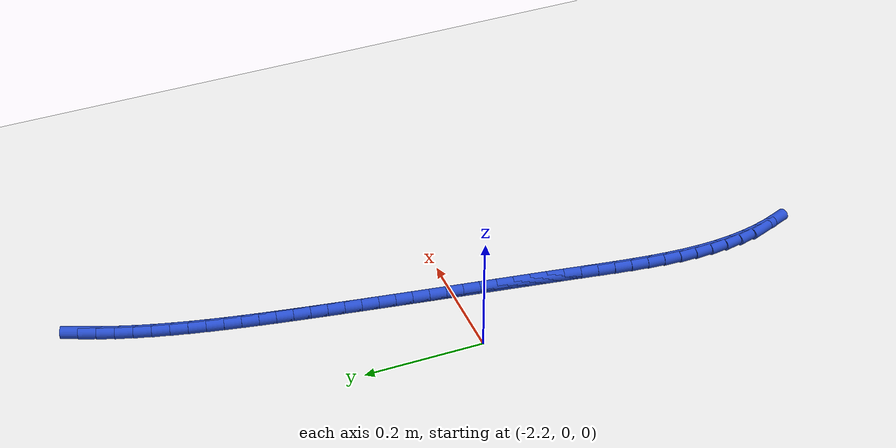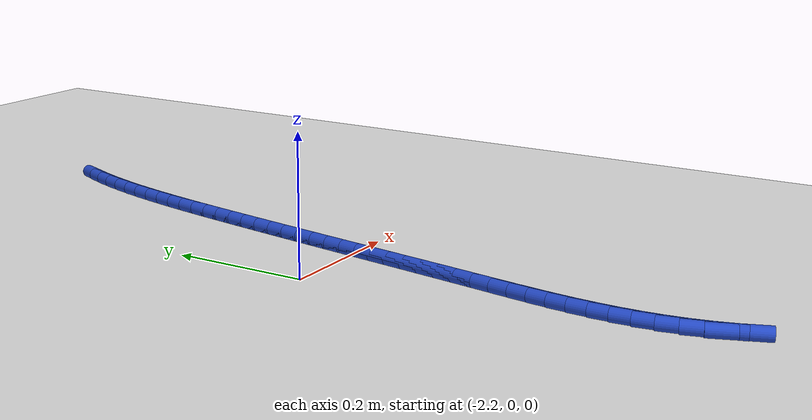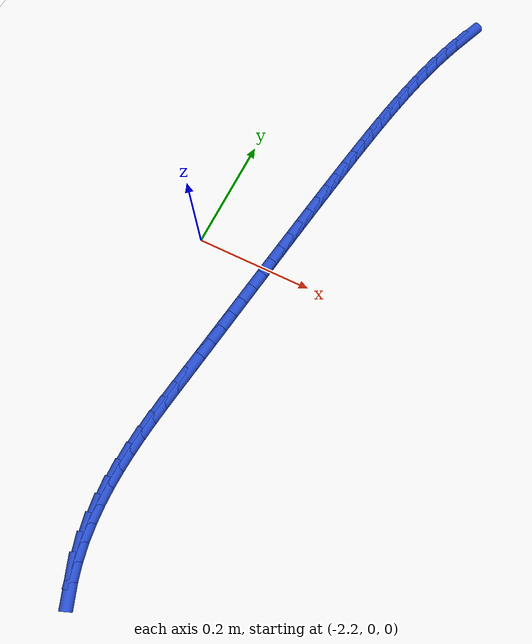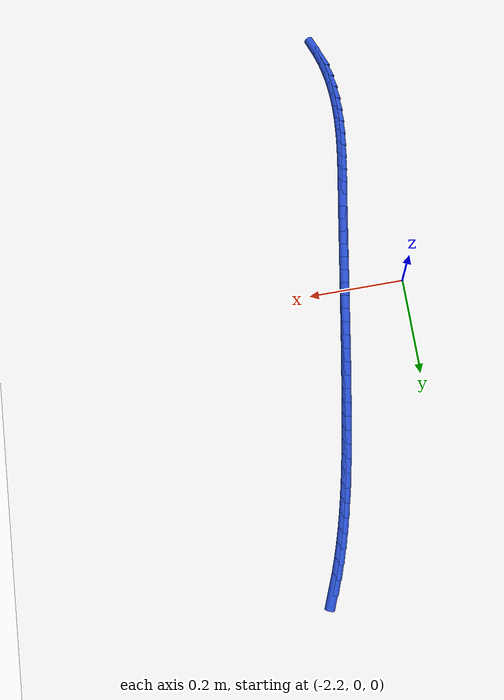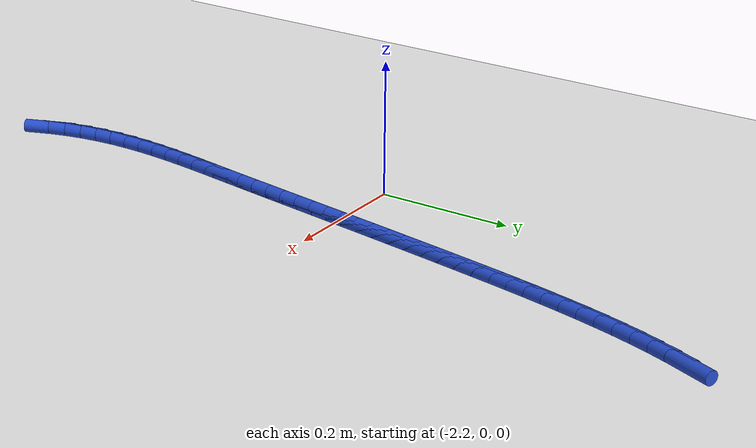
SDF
<sdf version="1.6">
 <world name="default">
  <model name="ground_plane">
   <static>1</static>
   <link name="link">
    <collision name="collision">
     <geometry><plane><normal>0 0 1</normal><size>100 100</size></plane></geometry>
     <surface><friction><ode><mu>100</mu><mu2>50</mu2></ode></friction></surface>
    </collision>
    <visual name="visual">
     <cast_shadows>0</cast_shadows>
     <geometry><plane><normal>0 0 1</normal><size>100 100</size></plane></geometry>
     <material>
      <script><uri>file://media/materials/scripts/gazebo.material</uri><name>Gazebo/WhiteGlow</name></script>
     </material>
    </visual>
   </link>
  </model>
  <model name="line">
   <link name="link_104">
    <pose>-1.9528196434080458 0.5803271276914919 0.01 0 1.57 1.1940924455504203</pose>
    <collision name="collision">
     <geometry><cylinder><radius>0.01</radius><length>0.08</length></cylinder></geometry>
    </collision>
    <visual name="visual">
     <material>
      <script><name>Gazebo/Blue</name><uri>file://media/materials/scripts/gazebo.material</uri></script>
     </material>
     <geometry><cylinder><radius>0.01</radius><length>0.08</length></cylinder></geometry>
    </visual>
   </link>
   <link name="link_105">
    <pose>-1.9632608250632977 0.5539335660802178 0.01 0 1.57 1.2306852542449371</pose>
    <collision name="collision">
     <geometry><cylinder><radius>0.01</radius><length>0.08</length></cylinder></geometry>
    </collision>
    <visual name="visual">
     <material>
      <script><name>Gazebo/Blue</name><uri>file://media/materials/scripts/gazebo.material</uri></script>
     </material>
     <geometry><cylinder><radius>0.01</radius><length>0.08</length></cylinder></geometry>
    </visual>
   </link>
   <link name="link_106">
    <pose>-1.9728110193198078 0.5269450841373367 0.01 0 1.57 1.2628102483518404</pose>
    <collision name="collision">
     <geometry><cylinder><radius>0.01</radius><length>0.08</length></cylinder></geometry>
    </collision>
    <visual name="visual">
     <material>
      <script><name>Gazebo/Blue</name><uri>file://media/materials/scripts/gazebo.material</uri></script>
     </material>
     <geometry><cylinder><radius>0.01</radius><length>0.08</length></cylinder></geometry>
    </visual>
   </link>
   <link name="link_107">
    <pose>-1.9815456757469443 0.4994869679423927 0.01 0 1.57 1.2908013341479834</pose>
    <collision name="collision">
     <geometry><cylinder><radius>0.01</radius><length>0.08</length></cylinder></geometry>
    </collision>
    <visual name="visual">
     <material>
      <script><name>Gazebo/Blue</name><uri>file://media/materials/scripts/gazebo.material</uri></script>
     </material>
     <geometry><cylinder><radius>0.01</radius><length>0.08</length></cylinder></geometry>
    </visual>
   </link>
   <link name="link_108">
    <pose>-1.9895402439140726 0.4716845035749297 0.01 0 1.57 1.3149469267135794</pose>
    <collision name="collision">
     <geometry><cylinder><radius>0.01</radius><length>0.08</length></cylinder></geometry>
    </collision>
    <visual name="visual">
     <material>
      <script><name>Gazebo/Blue</name><uri>file://media/materials/scripts/gazebo.material</uri></script>
     </material>
     <geometry><cylinder><radius>0.01</radius><length>0.08</length></cylinder></geometry>
    </visual>
   </link>
   <link name="link_109">
    <pose>-1.9968701733905614 0.4436629771144911 0.01 0 1.57 1.3354844950902194</pose>
    <collision name="collision">
     <geometry><cylinder><radius>0.01</radius><length>0.08</length></cylinder></geometry>
    </collision>
    <visual name="visual">
     <material>
      <script><name>Gazebo/Blue</name><uri>file://media/materials/scripts/gazebo.material</uri></script>
     </material>
     <geometry><cylinder><radius>0.01</radius><length>0.08</length></cylinder></geometry>
    </visual>
   </link>
   <link name="link_110">
    <pose>-2.0036109137457774 0.41554767464062076 0.01 0 1.57 1.3525971160494477</pose>
    <collision name="collision">
     <geometry><cylinder><radius>0.01</radius><length>0.08</length></cylinder></geometry>
    </collision>
    <visual name="visual">
     <material>
      <script><name>Gazebo/Blue</name><uri>file://media/materials/scripts/gazebo.material</uri></script>
     </material>
     <geometry><cylinder><radius>0.01</radius><length>0.08</length></cylinder></geometry>
    </visual>
   </link>
   <link name="link_111">
    <pose>-2.0098379145490877 0.3874638822328621 0.01 0 1.57 1.3664580195397333</pose>
    <collision name="collision">
     <geometry><cylinder><radius>0.01</radius><length>0.08</length></cylinder></geometry>
    </collision>
    <visual name="visual">
     <material>
      <script><name>Gazebo/Blue</name><uri>file://media/materials/scripts/gazebo.material</uri></script>
     </material>
     <geometry><cylinder><radius>0.01</radius><length>0.08</length></cylinder></geometry>
    </visual>
   </link>
   <link name="link_112">
    <pose>-2.0156262460256755 0.3595320464020627 0.01 0 1.57 1.3779459827203466</pose>
    <collision name="collision">
     <geometry><cylinder><radius>0.01</radius><length>0.08</length></cylinder></geometry>
    </collision>
    <visual name="visual">
     <material>
      <script><name>Gazebo/Blue</name><uri>file://media/materials/scripts/gazebo.material</uri></script>
     </material>
     <geometry><cylinder><radius>0.01</radius><length>0.08</length></cylinder></geometry>
    </visual>
   </link>
   <link name="link_113">
    <pose>-2.0210442545907625 0.3317868331419015 0.01 0 1.57 1.387699313373497</pose>
    <collision name="collision">
     <geometry><cylinder><radius>0.01</radius><length>0.08</length></cylinder></geometry>
    </collision>
    <visual name="visual">
     <material>
      <script><name>Gazebo/Blue</name><uri>file://media/materials/scripts/gazebo.material</uri></script>
     </material>
     <geometry><cylinder><radius>0.01</radius><length>0.08</length></cylinder></geometry>
    </visual>
   </link>
   <link name="link_114">
    <pose>-2.026154516324393 0.304189292097873 0.01 0 1.57 1.395647436246203</pose>
    <collision name="collision">
     <geometry><cylinder><radius>0.01</radius><length>0.08</length></cylinder></geometry>
    </collision>
    <visual name="visual">
     <material>
      <script><name>Gazebo/Blue</name><uri>file://media/materials/scripts/gazebo.material</uri></script>
     </material>
     <geometry><cylinder><radius>0.01</radius><length>0.08</length></cylinder></geometry>
    </visual>
   </link>
   <link name="link_115">
    <pose>-2.0310194200564626 0.27669808402956375 0.01 0 1.57 1.401715998084042</pose>
    <collision name="collision">
     <geometry><cylinder><radius>0.01</radius><length>0.08</length></cylinder></geometry>
    </collision>
    <visual name="visual">
     <material>
      <script><name>Gazebo/Blue</name><uri>file://media/materials/scripts/gazebo.material</uri></script>
     </material>
     <geometry><cylinder><radius>0.01</radius><length>0.08</length></cylinder></geometry>
    </visual>
   </link>
   <link name="link_116">
    <pose>-2.0357013546168643 0.24927186969656068 0.01 0 1.57 1.4058529125354435</pose>
    <collision name="collision">
     <geometry><cylinder><radius>0.01</radius><length>0.08</length></cylinder></geometry>
    </collision>
    <visual name="visual">
     <material>
      <script><name>Gazebo/Blue</name><uri>file://media/materials/scripts/gazebo.material</uri></script>
     </material>
     <geometry><cylinder><radius>0.01</radius><length>0.08</length></cylinder></geometry>
    </visual>
   </link>
   <link name="link_117">
    <pose>-2.040262661944877 0.22186934108276585 0.01 0 1.57 1.4084869525822177</pose>
    <collision name="collision">
     <geometry><cylinder><radius>0.01</radius><length>0.08</length></cylinder></geometry>
    </collision>
    <visual name="visual">
     <material>
      <script><name>Gazebo/Blue</name><uri>file://media/materials/scripts/gazebo.material</uri></script>
     </material>
     <geometry><cylinder><radius>0.01</radius><length>0.08</length></cylinder></geometry>
    </visual>
   </link>
   <link name="link_118">
    <pose>-2.0447511199196216 0.19445888833459984 0.01 0 1.57 1.4107191960696348</pose>
    <collision name="collision">
     <geometry><cylinder><radius>0.01</radius><length>0.08</length></cylinder></geometry>
    </collision>
    <visual name="visual">
     <material>
      <script><name>Gazebo/Blue</name><uri>file://media/materials/scripts/gazebo.material</uri></script>
     </material>
     <geometry><cylinder><radius>0.01</radius><length>0.08</length></cylinder></geometry>
    </visual>
   </link>
   <link name="link_119">
    <pose>-2.0491793797436504 0.16703229234353828 0.01 0 1.57 1.4127122365793172</pose>
    <collision name="collision">
     <geometry><cylinder><radius>0.01</radius><length>0.08</length></cylinder></geometry>
    </collision>
    <visual name="visual">
     <material>
      <script><name>Gazebo/Blue</name><uri>file://media/materials/scripts/gazebo.material</uri></script>
     </material>
     <geometry><cylinder><radius>0.01</radius><length>0.08</length></cylinder></geometry>
    </visual>
   </link>
   <link name="link_120">
    <pose>-2.0535549030493367 0.1395847897197531 0.01 0 1.57 1.414465109806236</pose>
    <collision name="collision">
     <geometry><cylinder><radius>0.01</radius><length>0.08</length></cylinder></geometry>
    </collision>
    <visual name="visual">
     <material>
      <script><name>Gazebo/Blue</name><uri>file://media/materials/scripts/gazebo.material</uri></script>
     </material>
     <geometry><cylinder><radius>0.01</radius><length>0.08</length></cylinder></geometry>
    </visual>
   </link>
   <link name="link_121">
    <pose>-2.0578851514690557 0.11211161707341527 0.01 0 1.57 1.4159771680110544</pose>
    <collision name="collision">
     <geometry><cylinder><radius>0.01</radius><length>0.08</length></cylinder></geometry>
    </collision>
    <visual name="visual">
     <material>
      <script><name>Gazebo/Blue</name><uri>file://media/materials/scripts/gazebo.material</uri></script>
     </material>
     <geometry><cylinder><radius>0.01</radius><length>0.08</length></cylinder></geometry>
    </visual>
   </link>
   <link name="link_122">
    <pose>-2.062177586635182 0.08460801101469662 0.01 0 1.57 1.4172480773622487</pose>
    <collision name="collision">
     <geometry><cylinder><radius>0.01</radius><length>0.08</length></cylinder></geometry>
    </collision>
    <visual name="visual">
     <material>
      <script><name>Gazebo/Blue</name><uri>file://media/materials/scripts/gazebo.material</uri></script>
     </material>
     <geometry><cylinder><radius>0.01</radius><length>0.08</length></cylinder></geometry>
    </visual>
   </link>
   <link name="link_123">
    <pose>-2.066439670180089 0.05706920815376883 0.01 0 1.57 1.418277814680453</pose>
    <collision name="collision">
     <geometry><cylinder><radius>0.01</radius><length>0.08</length></cylinder></geometry>
    </collision>
    <visual name="visual">
     <material>
      <script><name>Gazebo/Blue</name><uri>file://media/materials/scripts/gazebo.material</uri></script>
     </material>
     <geometry><cylinder><radius>0.01</radius><length>0.08</length></cylinder></geometry>
    </visual>
   </link>
   <link name="link_124">
    <pose>-2.070678863736153 0.029490445100803384 0.01 0 1.57 1.4190666636219758</pose>
    <collision name="collision">
     <geometry><cylinder><radius>0.01</radius><length>0.08</length></cylinder></geometry>
    </collision>
    <visual name="visual">
     <material>
      <script><name>Gazebo/Blue</name><uri>file://media/materials/scripts/gazebo.material</uri></script>
     </material>
     <geometry><cylinder><radius>0.01</radius><length>0.08</length></cylinder></geometry>
    </visual>
   </link>
   <link name="link_125">
    <pose>-2.0749026289357473 0.0018669584659719608 0.01 0 1.57 1.4196152103352375</pose>
    <collision name="collision">
     <geometry><cylinder><radius>0.01</radius><length>0.08</length></cylinder></geometry>
    </collision>
    <visual name="visual">
     <material>
      <script><name>Gazebo/Blue</name><uri>file://media/materials/scripts/gazebo.material</uri></script>
     </material>
     <geometry><cylinder><radius>0.01</radius><length>0.08</length></cylinder></geometry>
    </visual>
   </link>
   <link name="link_126">
    <pose>-2.0791184274112466 -0.025806015140553883 0.01 0 1.57 1.4199243386227394</pose>
    <collision name="collision">
     <geometry><cylinder><radius>0.01</radius><length>0.08</length></cylinder></geometry>
    </collision>
    <visual name="visual">
     <material>
      <script><name>Gazebo/Blue</name><uri>file://media/materials/scripts/gazebo.material</uri></script>
     </material>
     <geometry><cylinder><radius>0.01</radius><length>0.08</length></cylinder></geometry>
    </visual>
   </link>
   <link name="link_127">
    <pose>-2.0833337207950255 -0.053533239108602526 0.01 0 1.57 1.4199952246379572</pose>
    <collision name="collision">
     <geometry><cylinder><radius>0.01</radius><length>0.08</length></cylinder></geometry>
    </collision>
    <visual name="visual">
     <material>
      <script><name>Gazebo/Blue</name><uri>file://media/materials/scripts/gazebo.material</uri></script>
     </material>
     <geometry><cylinder><radius>0.01</radius><length>0.08</length></cylinder></geometry>
    </visual>
   </link>
   <link name="link_128">
    <pose>-2.0875559707194586 -0.08131947682800239 0.01 0 1.57 1.4198293311440995</pose>
    <collision name="collision">
     <geometry><cylinder><radius>0.01</radius><length>0.08</length></cylinder></geometry>
    </collision>
    <visual name="visual">
     <material>
      <script><name>Gazebo/Blue</name><uri>file://media/materials/scripts/gazebo.material</uri></script>
     </material>
     <geometry><cylinder><radius>0.01</radius><length>0.08</length></cylinder></geometry>
    </visual>
   </link>
   <link name="link_129">
    <pose>-2.091792638816921 -0.10916949168858193 0.01 0 1.57 1.419428401359366</pose>
    <collision name="collision">
     <geometry><cylinder><radius>0.01</radius><length>0.08</length></cylinder></geometry>
    </collision>
    <visual name="visual">
     <material>
      <script><name>Gazebo/Blue</name><uri>file://media/materials/scripts/gazebo.material</uri></script>
     </material>
     <geometry><cylinder><radius>0.01</radius><length>0.08</length></cylinder></geometry>
    </visual>
   </link>
   <link name="link_130">
    <pose>-2.096051186719786 -0.1370880470801695 0.01 0 1.57 1.418794452410252</pose>
    <collision name="collision">
     <geometry><cylinder><radius>0.01</radius><length>0.08</length></cylinder></geometry>
    </collision>
    <visual name="visual">
     <material>
      <script><name>Gazebo/Blue</name><uri>file://media/materials/scripts/gazebo.material</uri></script>
     </material>
     <geometry><cylinder><radius>0.01</radius><length>0.08</length></cylinder></geometry>
    </visual>
   </link>
   <link name="link_131">
    <pose>-2.1003390760604286 -0.1650799063925935 0.01 0 1.57 1.4179297684132175</pose>
    <collision name="collision">
     <geometry><cylinder><radius>0.01</radius><length>0.08</length></cylinder></geometry>
    </collision>
    <visual name="visual">
     <material>
      <script><name>Gazebo/Blue</name><uri>file://media/materials/scripts/gazebo.material</uri></script>
     </material>
     <geometry><cylinder><radius>0.01</radius><length>0.08</length></cylinder></geometry>
    </visual>
   </link>
   <link name="link_132">
    <pose>-2.104663768471223 -0.1931498330156824 0.01 0 1.57 1.4168368935794637</pose>
    <collision name="collision">
     <geometry><cylinder><radius>0.01</radius><length>0.08</length></cylinder></geometry>
    </collision>
    <visual name="visual">
     <material>
      <script><name>Gazebo/Blue</name><uri>file://media/materials/scripts/gazebo.material</uri></script>
     </material>
     <geometry><cylinder><radius>0.01</radius><length>0.08</length></cylinder></geometry>
    </visual>
   </link>
   <link name="link_133">
    <pose>-2.1090327255733623 -0.22130259033744923 0.01 0 1.57 1.4166911762123866</pose>
    <collision name="collision">
     <geometry><cylinder><radius>0.01</radius><length>0.08</length></cylinder></geometry>
    </collision>
    <visual name="visual">
     <material>
      <script><name>Gazebo/Blue</name><uri>file://media/materials/scripts/gazebo.material</uri></script>
     </material>
     <geometry><cylinder><radius>0.01</radius><length>0.08</length></cylinder></geometry>
    </visual>
   </link>
   <link name="link_134">
    <pose>-2.113418613036621 -0.24953729299036256 0.01 0 1.57 1.4220755765027004</pose>
    <collision name="collision">
     <geometry><cylinder><radius>0.01</radius><length>0.08</length></cylinder></geometry>
    </collision>
    <visual name="visual">
     <material>
      <script><name>Gazebo/Blue</name><uri>file://media/materials/scripts/gazebo.material</uri></script>
     </material>
     <geometry><cylinder><radius>0.01</radius><length>0.08</length></cylinder></geometry>
    </visual>
   </link>
   <link name="link_135">
    <pose>-2.117657762782997 -0.2778309232615379 0.01 0 1.57 1.4341257231922753</pose>
    <collision name="collision">
     <geometry><cylinder><radius>0.01</radius><length>0.08</length></cylinder></geometry>
    </collision>
    <visual name="visual">
     <material>
      <script><name>Gazebo/Blue</name><uri>file://media/materials/scripts/gazebo.material</uri></script>
     </material>
     <geometry><cylinder><radius>0.01</radius><length>0.08</length></cylinder></geometry>
    </visual>
   </link>
   <link name="link_136">
    <pose>-2.1215531212811953 -0.3061550436620327 0.01 0 1.57 1.4529207946813034</pose>
    <collision name="collision">
     <geometry><cylinder><radius>0.01</radius><length>0.08</length></cylinder></geometry>
    </collision>
    <visual name="visual">
     <material>
      <script><name>Gazebo/Blue</name><uri>file://media/materials/scripts/gazebo.material</uri></script>
     </material>
     <geometry><cylinder><radius>0.01</radius><length>0.08</length></cylinder></geometry>
    </visual>
   </link>
   <link name="link_137">
    <pose>-2.1249076349999183 -0.33448121670290454 0.01 0 1.57 1.4785978638225916</pose>
    <collision name="collision">
     <geometry><cylinder><radius>0.01</radius><length>0.08</length></cylinder></geometry>
    </collision>
    <visual name="visual">
     <material>
      <script><name>Gazebo/Blue</name><uri>file://media/materials/scripts/gazebo.material</uri></script>
     </material>
     <geometry><cylinder><radius>0.01</radius><length>0.08</length></cylinder></geometry>
    </visual>
   </link>
   <link name="link_138">
    <pose>-2.1275242504078697 -0.3627810048952107 0.01 0 1.57 1.511328005380567</pose>
    <collision name="collision">
     <geometry><cylinder><radius>0.01</radius><length>0.08</length></cylinder></geometry>
    </collision>
    <visual name="visual">
     <material>
      <script><name>Gazebo/Blue</name><uri>file://media/materials/scripts/gazebo.material</uri></script>
     </material>
     <geometry><cylinder><radius>0.01</radius><length>0.08</length></cylinder></geometry>
    </visual>
   </link>
   <link name="link_139">
    <pose>-2.129205913973754 -0.39102597075000894 0.01 0 1.57 1.551280875189637</pose>
    <collision name="collision">
     <geometry><cylinder><radius>0.01</radius><length>0.08</length></cylinder></geometry>
    </collision>
    <visual name="visual">
     <material>
      <script><name>Gazebo/Blue</name><uri>file://media/materials/scripts/gazebo.material</uri></script>
     </material>
     <geometry><cylinder><radius>0.01</radius><length>0.08</length></cylinder></geometry>
    </visual>
   </link>
   <link name="link_140">
    <pose>-2.1297555721662733 -0.4191876767783564 0.01 0 1.57 -1.543017361393749</pose>
    <collision name="collision">
     <geometry><cylinder><radius>0.01</radius><length>0.08</length></cylinder></geometry>
    </collision>
    <visual name="visual">
     <material>
      <script><name>Gazebo/Blue</name><uri>file://media/materials/scripts/gazebo.material</uri></script>
     </material>
     <geometry><cylinder><radius>0.01</radius><length>0.08</length></cylinder></geometry>
    </visual>
   </link>
   <link name="link_141">
    <pose>-2.128976171454132 -0.44723768549131077 0.01 0 1.57 -1.4883778076699994</pose>
    <collision name="collision">
     <geometry><cylinder><radius>0.01</radius><length>0.08</length></cylinder></geometry>
    </collision>
    <visual name="visual">
     <material>
      <script><name>Gazebo/Blue</name><uri>file://media/materials/scripts/gazebo.material</uri></script>
     </material>
     <geometry><cylinder><radius>0.01</radius><length>0.08</length></cylinder></geometry>
    </visual>
   </link>
   <link name="link_142">
    <pose>-2.126670658306034 -0.47514755939992964 0.01 0 1.57 -1.426581360320627</pose>
    <collision name="collision">
     <geometry><cylinder><radius>0.01</radius><length>0.08</length></cylinder></geometry>
    </collision>
    <visual name="visual">
     <material>
      <script><name>Gazebo/Blue</name><uri>file://media/materials/scripts/gazebo.material</uri></script>
     </material>
     <geometry><cylinder><radius>0.01</radius><length>0.08</length></cylinder></geometry>
    </visual>
   </link>
   <link name="link_143">
    <pose>-2.122641979190682 -0.5028888610152702 0.01 0 1.57 -1.3580877316513176</pose>
    <collision name="collision">
     <geometry><cylinder><radius>0.01</radius><length>0.08</length></cylinder></geometry>
    </collision>
    <visual name="visual">
     <material>
      <script><name>Gazebo/Blue</name><uri>file://media/materials/scripts/gazebo.material</uri></script>
     </material>
     <geometry><cylinder><radius>0.01</radius><length>0.08</length></cylinder></geometry>
    </visual>
   </link>
   <link name="link_144">
    <pose>-2.11669308057678 -0.5304331528483902 0.01 0 1.57 -1.283693486048094</pose>
    <collision name="collision">
     <geometry><cylinder><radius>0.01</radius><length>0.08</length></cylinder></geometry>
    </collision>
    <visual name="visual">
     <material>
      <script><name>Gazebo/Blue</name><uri>file://media/materials/scripts/gazebo.material</uri></script>
     </material>
     <geometry><cylinder><radius>0.01</radius><length>0.08</length></cylinder></geometry>
    </visual>
   </link>
   <link name="link_145">
    <pose>-2.1086269089330316 -0.5577519974103461 0.01 0 1.57 -1.204747727663234</pose>
    <collision name="collision">
     <geometry><cylinder><radius>0.01</radius><length>0.08</length></cylinder></geometry>
    </collision>
    <visual name="visual">
     <material>
      <script><name>Gazebo/Blue</name><uri>file://media/materials/scripts/gazebo.material</uri></script>
     </material>
     <geometry><cylinder><radius>0.01</radius><length>0.08</length></cylinder></geometry>
    </visual>
   </link>
  </model>
 </world>
</sdf>
